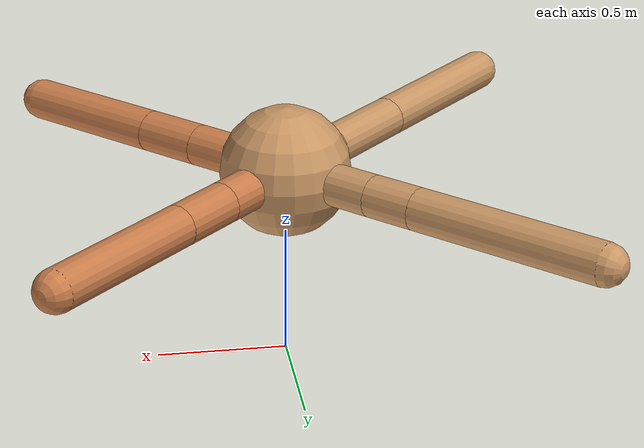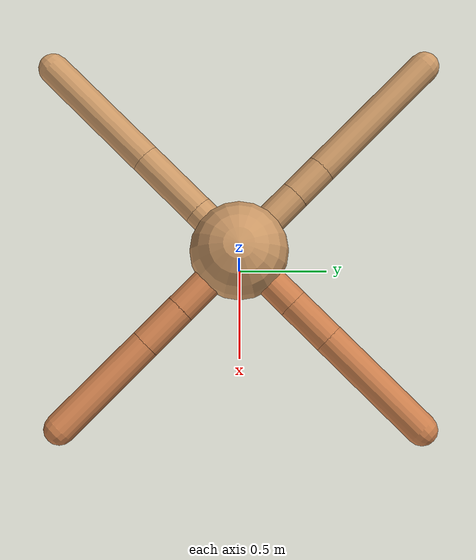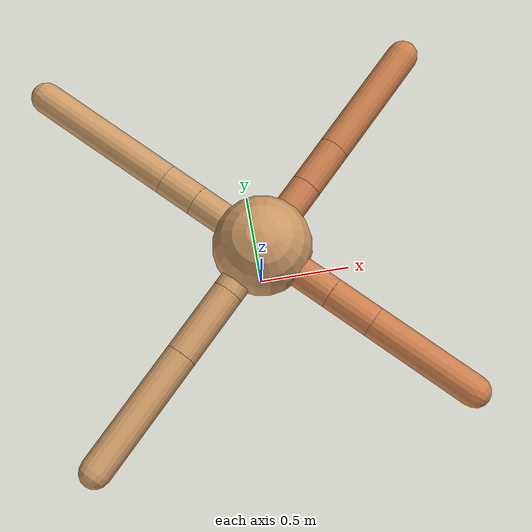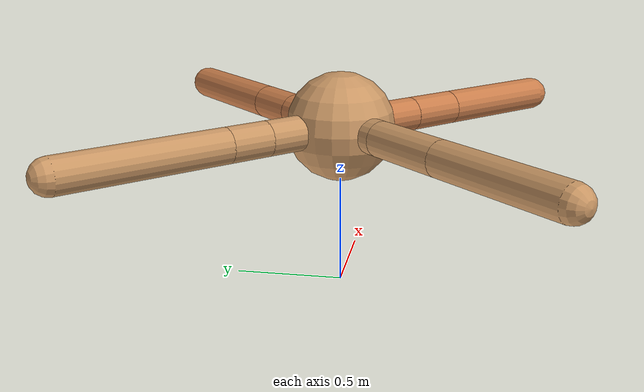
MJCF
<mujoco model="ant">
  <compiler angle="degree" coordinate="local" inertiafromgeom="true" />
  <option integrator="RK4" timestep="0.01" />
  <custom>
    <numeric data="0.0 0.0 0.55 1.0 0.0 0.0 0.0 0.0 1.0 0.0 -1.0 0.0 -1.0 0.0 1.0" name="init_qpos" />
  </custom>
  <default>
    <joint armature="1" damping="1" limited="true" />
    <geom conaffinity="0" condim="3" density="5.0" friction="1.5 0.1 0.1" margin="0.01" rgba="0.8 0.6 0.4 1" />
  </default>
  <worldbody>
    <body name="torso" pos="0 0 0.75">
      <geom name="torso_geom" pos="0 0 0" size="0.25" type="sphere" />

      <body name="front_left_leg" pos="0 0 0">
        <geom fromto="0.0 0.0 0.0 0.26813976159086533 0.26813976159086533 0.0" name="aux_1_geom" size="0.08" type="capsule" rgba=".8 .5 .3 1" />
        <body name="aux_1" pos="0.26813976159086533 0.26813976159086533 0.0">
          <joint axis="0 0 1" name="hip_1" pos="0.0 0.0 0.0" range="-40 40" type="hinge" />
          <geom fromto="0.0 0.0 0.0 0.17391631003682342 0.17391631003682342 0.0" name="left_leg_geom" size="0.08" type="capsule" rgba=".8 .5 .3 1" />
          <body pos="0.17391631003682342 0.17391631003682342 0.0" name="front_left_foot">
            <joint axis="-1 1 0" name="ankle_1" pos="0.0 0.0 0.0" range="30 100" type="hinge" />
            <geom fromto="0.0 0.0 0.0 0.4462743456191425 0.4462743456191425 0.0" name="left_ankle_geom" size="0.08" type="capsule" rgba=".8 .5 .3 1" />
          </body>
        </body>
      </body>
      <body name="front_right_leg" pos="0 0 0">
        <geom fromto="0.0 0.0 0.0 -0.28273191189980373 0.28273191189980373 0.0" name="aux_2_geom" size="0.08" type="capsule" />
        <body name="aux_2" pos="-0.28273191189980373 0.28273191189980373 0.0">
          <joint axis="0 0 1" name="hip_2" pos="0.0 0.0 0.0" range="-40 40" type="hinge" />
          <geom fromto="0.0 0.0 0.0 -0.13637448906938252 0.13637448906938252 0.0" name="right_leg_geom" size="0.08" type="capsule" />
          <body pos="-0.13637448906938252 0.13637448906938252 0.0" name="front_right_foot">
            <joint axis="1 1 0" name="ankle_2" pos="0.0 0.0 0.0" range="-100 -30" type="hinge" />
            <geom fromto="0.0 0.0 0.0 -0.5404430925408438 0.5404430925408438 0.0" name="right_ankle_geom" size="0.08" type="capsule" />
          </body>
        </body>
      </body>
      <body name="left_back_leg" pos="0 0 0">
        <geom fromto="0.0 0.0 0.0 -0.20661708763945652 -0.20661708763945652 0.0" name="aux_3_geom" size="0.08" type="capsule" />
        <body name="aux_3" pos="-0.20661708763945652 -0.20661708763945652 0.0">
          <joint axis="0 0 1" name="hip_3" pos="0.0 0.0 0.0" range="-40 40" type="hinge" />
          <geom fromto="0.0 0.0 0.0 -0.26905118242857484 -0.26905118242857484 0.0" name="back_leg_geom" size="0.08" type="capsule" />
          <body pos="-0.26905118242857484 -0.26905118242857484 0.0" name="left_back_foot">
            <joint axis="-1 1 0" name="ankle_3" pos="0.0 0.0 0.0" range="-100 -30" type="hinge" />
            <geom fromto="0.0 0.0 0.0 -0.480335968017946 -0.480335968017946 0.0" name="third_ankle_geom" size="0.08" type="capsule" />
          </body>
        </body>
      </body>
      <body name="right_back_leg" pos="0 0 0">
        <geom fromto="0.0 0.0 0.0 0.2935883830217991 -0.2935883830217991 0.0" name="aux_4_geom" size="0.08" type="capsule" rgba=".8 .5 .3 1" />
        <body name="aux_4" pos="0.2935883830217991 -0.2935883830217991 0.0">
          <joint axis="0 0 1" name="hip_4" pos="0.0 0.0 0.0" range="-40 40" type="hinge" />
          <geom fromto="0.0 0.0 0.0 0.17300276928500047 -0.17300276928500047 0.0" name="rightback_leg_geom" size="0.08" type="capsule" rgba=".8 .5 .3 1" />
          <body pos="0.17300276928500047 -0.17300276928500047 0.0" name="right_back_foot">
            <joint axis="1 1 0" name="ankle_4" pos="0.0 0.0 0.0" range="30 100" type="hinge" />
            <geom fromto="0.0 0.0 0.0 0.41256080437046966 -0.41256080437046966 0.0" name="fourth_ankle_geom" size="0.08" type="capsule" rgba=".8 .5 .3 1" />
          </body>
        </body>
      </body>
    </body>
  </worldbody>
  <actuator>
    <motor ctrllimited="true" ctrlrange="-1.0 1.0" joint="hip_4" gear="150" />
    <motor ctrllimited="true" ctrlrange="-1.0 1.0" joint="ankle_4" gear="150" />
    <motor ctrllimited="true" ctrlrange="-1.0 1.0" joint="hip_1" gear="150" />
    <motor ctrllimited="true" ctrlrange="-1.0 1.0" joint="ankle_1" gear="150" />
    <motor ctrllimited="true" ctrlrange="-1.0 1.0" joint="hip_2" gear="150" />
    <motor ctrllimited="true" ctrlrange="-1.0 1.0" joint="ankle_2" gear="150" />
    <motor ctrllimited="true" ctrlrange="-1.0 1.0" joint="hip_3" gear="150" />
    <motor ctrllimited="true" ctrlrange="-1.0 1.0" joint="ankle_3" gear="150" />
  </actuator>
</mujoco>
